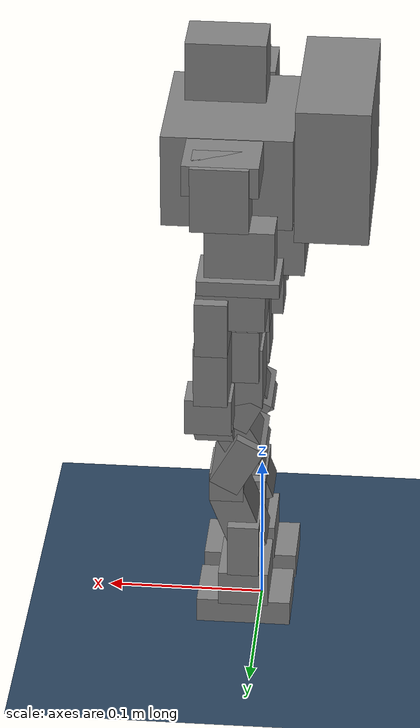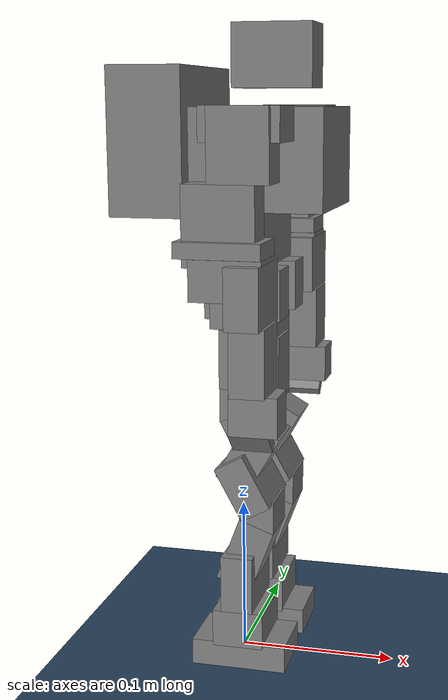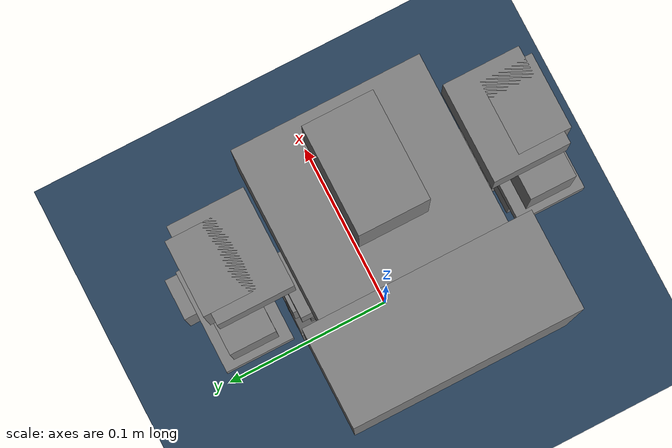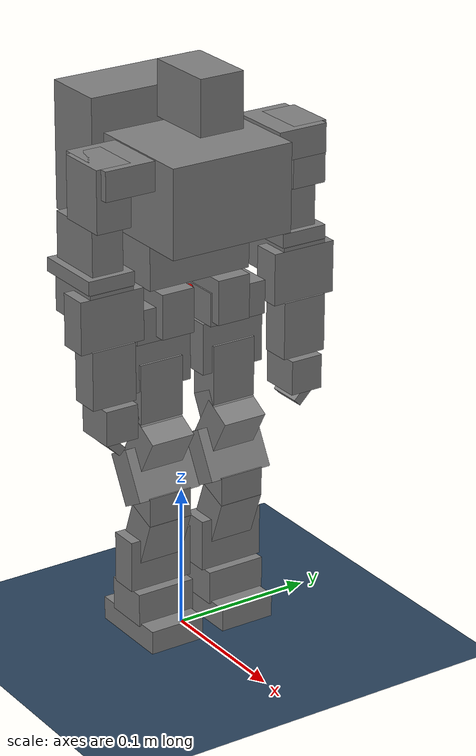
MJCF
<mujoco model="Kondo_scene_flat_ground">
    <include file="kondo_6.xml"/>

    <worldbody>
        <geom name="floor" pos = "0 0 0" size="0 0 .05" type="plane" material="grid" condim="3"/>
    </worldbody>

        <keyframe>

    <key name="stand" qpos='
    0.000285369 -2.13703e-08 0.280102
    1 4.00195e-08 -6.45728e-05 5.36241e-08
    -7.1121e-06 0.014453 -0.459231 0.928004 -0.468712 -0.0144505
    6.93945e-06 -0.014453 -0.467943 0.945379 -0.477376 0.0144504
    0 0
    0 0 0 0
    0 0 0 0'/>

    <key name="stand_2" qpos='
        0.01 0 0.28
        1 0 0 0
        0 0.0144613 -0.371244 0.918294 -0.54705 -0.0144613
        0 -0.0144613 -0.379635 0.93573 -0.556095 0.0144613
        0 0
        0 0 0 0
        0 0 0 0'/>

    <key name="squat" qpos='
        0.00326883 0 0.215544
        0.999472 0 0.0324943 0
        0.00142608 0.0219053 -1.31238 2.34488 -1.09752 -0.0219516
        -0.00142608 -0.0219053 -1.31742 2.35333 -1.10093 0.0219516
        0 0
        -0.63612 -0.04712 -0.37696 -1.67276
        -0.7068 -0.04712 0.98952 -1.46072'/>

    <key name="stand_hands_folded" qpos='
        0.01 0 0.28
        1 0 0 0
        -8.05913e-19 0.0144613 -0.371244 0.918294 -0.54705 -0.0144613
        1.28944e-18 -0.0144613 -0.379635 0.93573 -0.556095 0.0144613
        0 0
        -0.63612 -0.04712 -0.37696 -1.67276
        -0.7068 -0.04712 0.98952 -1.46072'/>

    </keyframe>
</mujoco>

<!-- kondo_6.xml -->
<mujoco model="Kondo_6">

    <compiler angle="radian"/>
    <size nconmax="20" nuserdata="210"/>
    <option integrator = "RK4" timestep = "0.002"
            jacobian = "dense" cone = "elliptic" impratio = "100"
            solver = "Newton" tolerance="1e-10"
            noslip_iterations="0" noslip_tolerance="1e-6" >
    </option>

    <asset>
        <texture type="skybox" builtin="gradient" rgb1=".3 .5 .7" rgb2="0 0 0" width="512" height="512"/>
        <texture name="body" type="cube" builtin="flat" mark="cross" width="127" height="1278"
             rgb1="0.8 0.6 0.4" rgb2="0.8 0.6 0.4" markrgb="1 1 1" random="0.01"/>
        <material name="body" texture="body" texuniform="true" rgba="0.8 0.6 .4 1"/>
        <texture name="grid" type="2d" builtin="checker" width="512" height="512" rgb1=".1 .2 .3" rgb2=".2 .3 .4"/>
        <material name="grid" texture="grid" texrepeat="1 1" texuniform="true" reflectance=".2"/>
    </asset>

    <default>
        <motor ctrllimited="true" ctrlrange="-1. 1."/>
        <joint damping="0.1"/>
    </default>

    <worldbody>
        <light name="spotlight1" mode="targetbodycom" target="Head"
           diffuse=".8 .8 .8" specular="0.3 0.3 0.3" pos="-10 10 3" cutoff="10"/>
        <light name="spotlight2" mode="targetbodycom" target="Torso"
           diffuse=".8 .8 .8" specular="0.3 0.3 0.3" pos="20 5 3" cutoff="10"/>

        <camera name="mycam1" pos="1.530 -0.516 0.147" xyaxes="0.282 0.959 -0.000 -0.161 0.047 0.986"/>
        <camera name="mycam2" pos="2.360 0.558 0.298" xyaxes="-0.184 0.983 0.000 -0.178 -0.033 0.984"/>

        <body name="Waist" pos="0 0 0.3">
            <freejoint/>
            <geom size="0.02525 0.038 0.018" pos="-0.00275 0 -0.022" type="box"/>

            <site name="waist_site" type="sphere" size="0.0025" pos="0.01 0 -0.05" rgba="1 0 0 1" />

            <body name="LeftHipBracket" pos="0.00875 0.02145 -0.03995">
                <joint name="Left_Hip_Yaw" pos="0 0 0" axis="0 0 1" limited="true" range="-0.24 0.24" frictionloss="0.12" />
                <geom size="0.02350 0.012 0.0155" pos="0 -0.0015 -0.0155" type="box"/>

                <body name="LeftPelvis" pos="0 -0.00455 -0.02235">
                    <joint name="Left_Hip_Roll" pos="0 0 0" axis="1 0 0" limited="true" range="-0.15 0.15" frictionloss="0.12" />
                    <geom size="0.016 0.02125 0.01175" pos="0 0.01125 -0.00025" type="box"/>
                    <geom size="0.01 0.02325 0.018" pos="0 0.01125 -0.03" type="box"/>

                    <body name="LeftThigh" pos="-0.0008 0.0113 -0.0387">
                        <joint name="Left_Hip_Pitch" pos="0 0 0" axis="0 1 0" limited="true" range="-1.8 1.57" frictionloss="0.12" />
                        <geom size="0.01175 0.016 0.021" pos="0.00075 0 -0.011" type="box"/>
                        <geom size="0.016 0.021 0.01125" pos="0.006 0 -0.054" quat="0.355262 0.611381 0.61138 0.355269" type="box"/>
                        <geom size="0.016 0.01 0.0108" pos="0.003 0 -0.037" quat="0.164913 0.687606 0.687607 0.164921" type="box"/>

                        <body name="LeftShin" pos="0.00015 0 -0.06375">
                            <joint name="Left_Knee_Pitch" pos="0 0 0" axis="0 1 0" limited="true" range="-0.1 2." frictionloss="0.12" />
                            <geom size="0.02325 0.018 0.01" pos="0.00425 0 -0.008" quat="0.608155 0.360758 0.360752 0.60816" type="box"/>
                            <geom size="0.016 0.021 0.0115" pos="0.004 0 -0.054" quat="0.402402 0.581438 0.581436 0.40241" type="box"/>
                            <geom size="0.0108 0.016 0.01" pos="0.0115 0 -0.028" type="box"/>

                            <body name="LeftAnkle" pos="0.0003 -0.0002 -0.06435">
                                <joint name="Left_Ankle_Pitch" pos="0 0 0" axis="0 1 0" limited="true" range="-0.5 1.57" frictionloss="0.12" />
                                <geom size="0.016 0.02125 0.01175" pos="0 0 -0.037" type="box"/>
                                <geom size="0.01 0.02325 0.018" pos="0 0 -0.007" type="box"/>

                                <body name="LeftFoot" pos="0 -0.01125 -0.037">
                                    <joint name="Left_Ankle_Roll" pos="0 0 0" axis="1 0 0" limited="true" range="-0.4 0.4" frictionloss="0.12" />
                                    <geom size="0.03 0.02 0.00825" pos="0 0.01125 -0.01825" type="box"/>

                                    <site name="left_foot_site" type="sphere" size="0.0025" pos="0 0.0125 -0.02655" rgba="1 0 0 1" />
                                </body>
                            </body>
                        </body>
                    </body>
                </body>
            </body>

            <body name="RightHipBracket" pos="0.00875 -0.02145 -0.03995">
                <joint name="Right_Hip_Yaw" pos="0 0 0" axis="0 0 1" limited="true" range="-0.24 0.24" frictionloss="0.12" />
                <geom size="0.02350 0.012 0.0155" pos="0 -0.0015 -0.0155" type="box"/>

                <body name="RightPelvis" pos="0 0.00455 -0.02235">
                    <joint name="Right_Hip_Roll" pos="0 0 0" axis="1 0 0" limited="true" range="-0.15 0.15" frictionloss="0.12" />
                    <geom size="0.016 0.02125 0.01175" pos="0 -0.01125 -0.00025" type="box"/>
                    <geom size="0.01 0.02325 0.018" pos="0 -0.01125 -0.03" type="box"/>

                    <body name="RightThigh" pos="-0.0008 -0.0113 -0.0387">
                        <joint name="Right_Hip_Pitch" pos="0 0 0" axis="0 1 0" limited="true" range="-1.8 1.57" frictionloss="0.12" />
                        <geom size="0.01175 0.016 0.021" pos="0.00075 0 -0.011" type="box"/>
                        <!-- The box representing the motor -->
                        <geom size="0.016 0.021 0.01125" pos="0.006 0 -0.054" quat="0.355262 0.611381 0.61138 0.355269" type="box"/>
                        <geom size="0.016 0.01 0.0108" pos="0.003 0 -0.037" quat="0.164913 0.687606 0.687607 0.164921" type="box"/>

                        <body name="RightShin" pos="0.00015 0 -0.06375">
                            <joint name="Right_Knee_Pitch" pos="0 0 0" axis="0 1 0" limited="true" range="-0.1 2." frictionloss="0.12" />
                            <!-- the fork / brackett -->
                            <geom size="0.02325 0.018 0.01" pos="0.00425 0 -0.008" quat="0.608155 0.360758 0.360752 0.60816" type="box"/>
                            <!-- The box representing the motor -->
                            <geom size="0.016 0.021 0.0115" pos="0.004 0 -0.054" quat="0.402402 0.581438 0.581436 0.40241" type="box"/>
                            <!-- the central small box -->
                            <geom size="0.0108 0.016 0.01" pos="0.0115 0 -0.028" type="box"/>

                            <body name="RightAnkle" pos="0.0003 0.0002 -0.06435">
                                <joint name="Right_Ankle_Pitch" pos="0 0 0" axis="0 1 0" limited="true" range="-0.5 1.57" frictionloss="0.12" />
                                <geom size="0.016 0.02125 0.01175" pos="0 0 -0.0375" type="box"/>
                                <geom size="0.01 0.02325 0.018" pos="0 0 -0.007" type="box"/>

                                <body name="RightFoot" pos="0 0.01125 -0.0375">
                                    <joint name="Right_Ankle_Roll" pos="0 0 0" axis="1 0 0" limited="true" range="-0.4 0.4" frictionloss="0.12" />
                                    <geom size="0.03 0.02 0.00825" pos="0 -0.01125 -0.01825" type="box"/>

                                    <site name="right_foot_site" type="sphere" size="0.0025" pos="0 -0.0125 -0.02655" rgba="1 0 0 1" />
                                </body>
                            </body>
                        </body>
                    </body>
                </body>
            </body>

            <body name="Torso" pos="0.02425 0 0.04715">
                <joint name="Waist_Yaw" pos="0 0 0" axis="0 0 1" limited="true" range="-2.356 2.356" frictionloss="0.12" />
                <geom size="0.04025 0.0445 0.03025" pos="-0.00475 0 -0.022" type="box"/>
                <geom size="0.02275 0.0525 0.044" pos="-0.06925 0 -0.012" type="box" density="100"/>

                <body name="Head" pos="-0.00395 0 0.0134">
                    <joint name="Neck_Yaw" pos="0 0 0" axis="0 0 1" limited="true" range="-2.356 2.356" frictionloss="0.12" />
                    <geom size="0.02475 0.016 0.019" pos="0.00225 0 0.02475" type="box"/>
                </body>

                <body name="LeftShoulderBracket" pos="-0.0041 0.04725 -0.0009">
                    <joint name="Left_Shoulder_Pitch" pos="0 0 0" axis="0 1 0" limited="true" range="-2.356 2.356" frictionloss="0.12" />
                    <geom size="0.02325 0.018 0.01" pos="0 0.0175 0" type="box"/>

                    <body name="LeftUpperArm" pos="0 0.02645 0">
                        <joint name="Left_Shoulder_Roll" pos="0 0 0" axis="1 0 0" limited="true" range="-2.356 2.356" frictionloss="0.12" />
                        <geom size="0.017775 0.0125 0.02125" pos="0.00025 0 -0.01125" type="box"/>
                        <geom size="0.02125 0.01125 0.015775" pos="-0.01175 -0.00025 -0.04825" type="box"/>
                        <geom size="0.02525 0.016775 0.00475" pos="-0.01125 -0.00025 -0.06875" type="box"/>

                        <body name="LeftElbowBracket" pos="0.00225 -0.00025 -0.07365">
                            <joint name="Left_Arm_Yaw" pos="0 0 0" axis="0 0 1" limited="true" range="-2.356 2.356" frictionloss="0.12" />
                            <geom size="0.0211 0.016 0.012" pos="-0.009 0 -0.012" type="box"/>

                            <body name="LeftForeArm" pos="0.0022 0 -0.0117">
                                <joint name="Left_Elbow_Pitch" pos="0 0 0" axis="0 1 0" limited="true" range="-2.356 2.356" frictionloss="0.12" />
                                <geom size="0.01 0.02325 0.018" pos="0 0 -0.009" type="box"/>
                                <geom size="0.0105 0.016 0.02" pos="0.001 0 -0.0465" type="box"/>
                                <geom size="0.0145 0.01175 0.012" pos="0.003 -0.00175 -0.0785" type="box"/>
                                <geom size="0.00325 0.00875 0.012" pos="0 0.001 -0.094" quat="0.653278 0.270601 0.653282 0.270602" type="box"/>
                                <site name="left_hand_site" pos="0.003 -0.00175 -0.0785" type="sphere" size="0.0025" rgba="1 0 0 1"/>
                            </body>
                        </body>
                    </body>
                </body>

                <body name="RightShoulderBracket" pos="-0.0041 -0.0475 -0.0009">
                    <joint name="Right_Shoulder_Pitch" pos="0 0 0" axis="0 1 0" limited="true" range="-2.356 2.356" frictionloss="0.12" />
                    <geom size="0.02325 0.018 0.01" pos="0 -0.0175 0" type="box"/>

                    <body name="RightUpperArm" pos="0 -0.02645 0">
                        <joint name="Right_Shoulder_Roll" pos="0 0 0" axis="1 0 0" limited="true" range="-2.356 2.356" frictionloss="0.12" />
                        <geom size="0.017775 0.0125 0.02125" pos="0.00025 0 -0.01125" type="box"/>
                        <geom size="0.02125 0.01125 0.015775" pos="-0.01175 0.00025 -0.04825" type="box"/>
                        <geom size="0.02525 0.016775 0.00475" pos="-0.01125 0.00025 -0.06875" type="box"/>

                        <body name="RightElbowBracket" pos="0.00225 0.00025 -0.07365">
                            <joint name="Right_Arm_Yaw" pos="0 0 0" axis="0 0 1" limited="true" range="-2.356 2.356" frictionloss="0.12" />
                            <geom size="0.0211 0.016 0.012" pos="-0.009 0 -0.012" type="box"/>

                            <body name="RightForeArm" pos="0.0022 0 -0.0117">
                                <joint name="Right_Elbow_Pitch" pos="0 0 0" axis="0 1 0" limited="true" range="-2.356 2.356" frictionloss="0.12" />
                                <geom size="0.01 0.02325 0.018" pos="0 0 -0.009" type="box"/>
                                <geom size="0.0105 0.016 0.02" pos="0.001 0 -0.0465" type="box"/>
                                <geom size="0.0145 0.01175 0.012" pos="0.003 0.00175 -0.0785" type="box"/>
                                <geom size="0.00325 0.00875 0.012" pos="0 -0.001 -0.094" quat="0.270593 0.653284 0.270596 0.653282" type="box"/>
                                <site name="right_hand_site" pos="0.003 0.00175 -0.0785" type="sphere" size="0.0025" rgba="1 0 0 1"/>
                            </body>
                        </body>
                    </body>
                </body>
            </body>
        </body>
    </worldbody>

    <contact>
        <exclude body1="LeftHipBracket" body2="LeftThigh"/>
        <exclude body1="RightHipBracket" body2="RightThigh"/>

        <exclude body1="LeftPelvis" body2="RightPelvis"/>
        <exclude body1="LeftThigh" body2="RightThigh"/>
        <exclude body1="LeftShin" body2="RightShin"/>
        <exclude body1="LeftAnkle" body2="RightAnkle"/>
        <exclude body1="LeftFoot" body2="RightFoot"/>

        <exclude body1="LeftPelvis" body2="LeftForeArm"/>
        <exclude body1="RightPelvis" body2="RightForeArm"/>
    </contact>

    <actuator>
        <motor name="LHY" joint="Left_Hip_Yaw"/>
        <motor name="LHR" joint="Left_Hip_Roll"/>
        <motor name="LHP" joint="Left_Hip_Pitch"/>
        <motor name="LKP" joint="Left_Knee_Pitch"/>
        <motor name="LAP" joint="Left_Ankle_Pitch"/>
        <motor name="LAR" joint="Left_Ankle_Roll"/>

        <motor name="RHY" joint="Right_Hip_Yaw"/>
        <motor name="RHR" joint="Right_Hip_Roll"/>
        <motor name="RHP" joint="Right_Hip_Pitch"/>
        <motor name="RKP" joint="Right_Knee_Pitch"/>
        <motor name="RAP" joint="Right_Ankle_Pitch"/>
        <motor name="RAR" joint="Right_Ankle_Roll"/>

        <motor name="WY" joint="Waist_Yaw"/>
        <motor name="NY" joint="Neck_Yaw"/>

        <motor name="LSP" joint="Left_Shoulder_Pitch"/>
        <motor name="LSR" joint="Left_Shoulder_Roll"/>
        <motor name="LAY" joint="Left_Arm_Yaw"/>
        <motor name="LEP" joint="Left_Elbow_Pitch"/>

        <motor name="RSP" joint="Right_Shoulder_Pitch"/>
        <motor name="RSR" joint="Right_Shoulder_Roll"/>
        <motor name="RAY" joint="Right_Arm_Yaw"/>
        <motor name="REP" joint="Right_Elbow_Pitch"/>
    </actuator>

    <sensor>
        <framepos name="waist_site_pos" objtype="site" objname="waist_site"/>
        <framequat name="waist_site_quat" objtype="site" objname="waist_site"/>

        <framepos name="left_foot_site_pos" objtype="site" objname="left_foot_site"/>
        <framequat name="left_foot_site_quat" objtype="site" objname="left_foot_site"/>

        <framepos name="right_foot_site_pos" objtype="site" objname="right_foot_site"/>
        <framequat name="right_foot_site_quat" objtype="site" objname="right_foot_site"/>

        <user name="cf1" needstage="acc" datatype="real" dim="1"/>
    </sensor>

    <visual>
        <global offwidth="1280" offheight="720"/>
    </visual>

</mujoco>
